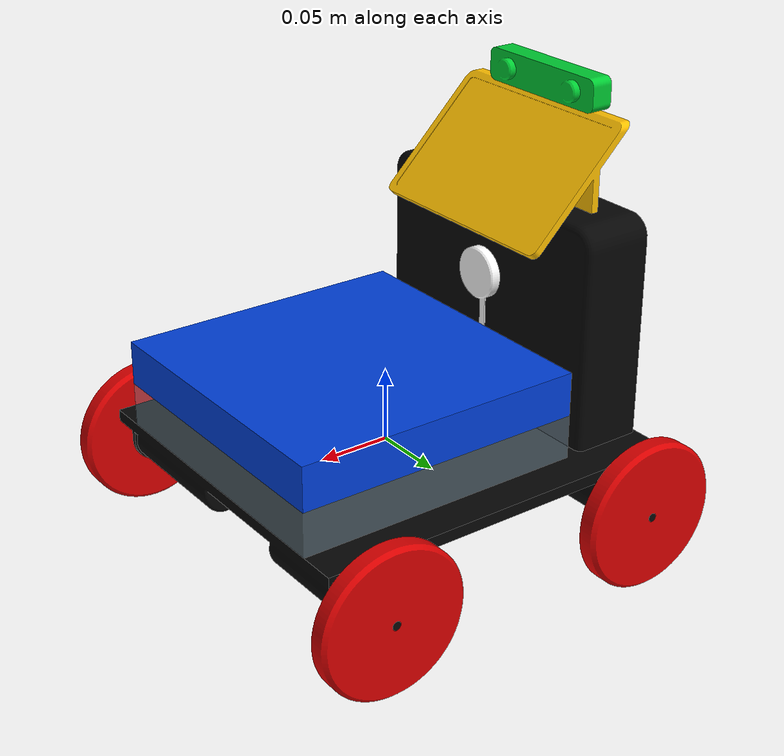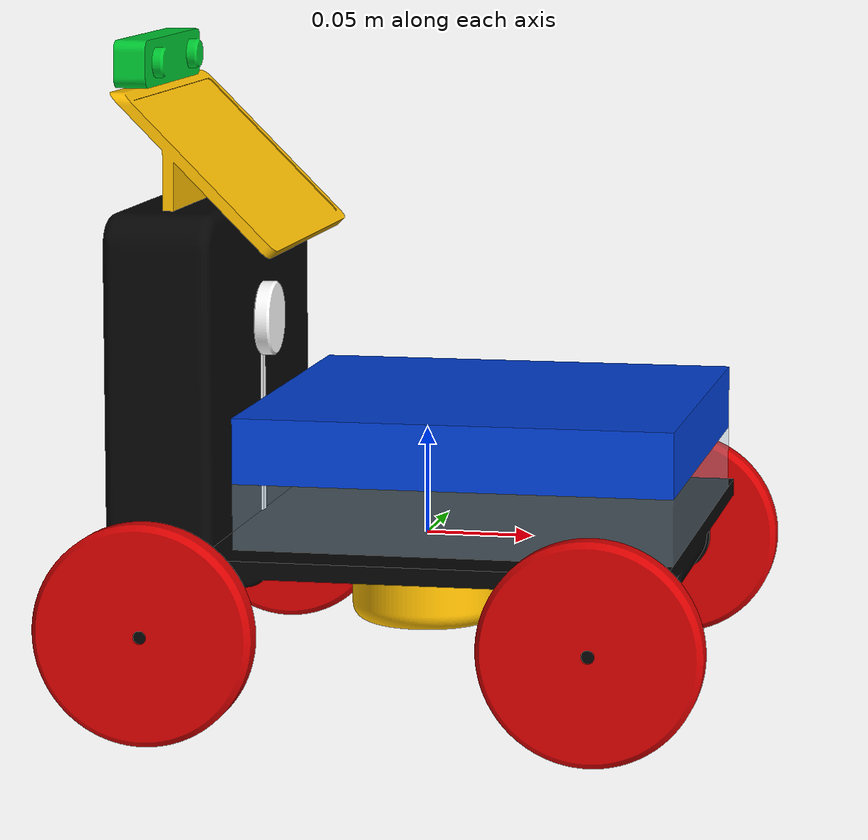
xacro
<?xml version='1.0' encoding='utf-8'?>
<robot name="cura" xmlns:xacro="http://www.ros.org/wiki/xacro">

    <xacro:include filename="$(find cura_description)/urdf/materials.xacro"/>
    <!-- Include gazebo -->
    <xacro:include filename="$(find cura_description)/urdf/gazebo.xacro"/>

    <link name="base_footprint"/>

    <link name="base_link">
        <inertial>
            <origin xyz="-0.08262380653775205 -2.2286482841173966e-06 0.061297925710071505" rpy="0.0 0.0 0.0" />
            <mass value="5.112448552839006" />
            <inertia ixx="0.0379135930743829" iyy="0.03713968953386242" izz="0.04251956273154715" ixy="9.414032329921333e-07" iyz="-9.604778950091125e-07" ixz="0.009027905699237473" />
        </inertial>
        <visual name="base_link_visual">
            <origin xyz="0.0 0.0 0.0" rpy="0.0 0.0 0.0" />
            <geometry>
                <mesh filename="package://cura_description/meshes/base_link.stl" scale="0.001 0.001 0.001" />
            </geometry>
            <material name="base_link"/>
        </visual>
        <collision name="base_link_collision">
            <origin xyz="0.0 0.0 0.051" rpy="0.0 0.0 0.0" />
            <geometry>
                <mesh filename="package://cura_description/meshes/base_link.stl" scale="0.001 0.001 0.001" />
            </geometry>
        </collision>
    </link>
    <link name="sanitation_tank">
        <inertial>
            <origin xyz="-3.7017007608692317e-16 0.09999999999999988 0.014999999999999918" rpy="0.0 -0.0 0.0" />
            <mass value="0.1810668300000006" />
            <inertia ixx="0.0007586630270449977" iyy="0.0007586630270450012" izz="0.0014546284342450005" ixy="9.17793106534601e-19" iyz="-1.81603863891322e-18" ixz="-5.011148212657467e-19" />
        </inertial>
        <visual name="sanitation_tank_visual">
            <origin xyz="-4.263256414560601e-16 0.12499999999999972 -0.00800000000000008" rpy="-3.8925688692122967e-16 -6.383782391594647e-16 -1.5707963267948932" />
            <geometry>
                <mesh filename="package://cura_description/meshes/sanitation_tank.stl" scale="0.001 0.001 0.001" />
            </geometry>
            <material name="sanitization_transparent"/>
        </visual>
        <collision name="sanitation_tank_collision">
            <origin xyz="0 0.1 0.015" rpy="0 0 0" />
            <geometry>
                <box size="0.2 0.2 0.03"/>
            </geometry>
        </collision>
    </link>
    <link name="ultrasonic_humidifier">
        <inertial>
            <origin xyz="9.495055921730156e-18 -0.08926824762380647 0.0035869477650948144" rpy="0.0 -0.0 0.0" />
            <mass value="0.00793228924731246" />
            <inertia ixx="1.9151899989100897e-06" iyy="6.081252851735302e-07" izz="2.446233038281946e-06" ixy="-4.31330295791347e-21" iyz="6.68987338025778e-08" ixz="-1.0478967289628475e-21" />
        </inertial>
        <visual name="ultrasonic_humidifier_visual">
            <origin xyz="0.0 0.008 0.08" rpy="1.5707963267948966 -1.5707963267948966 0" />
            <geometry>
                <mesh filename="package://cura_description/meshes/ultrasonic_humidifier.stl" scale="0.001 0.001 0.001" />
            </geometry>
            <material name="ultrasonic_humidifier"/>
        </visual>
        <collision name="ultrasonic_humidifier_collision">
            <origin xyz="0.0 -0.08 0.0" rpy="0 0 0" />
            <geometry>
                <cylinder radius="0.0175" length="0.0075"/>
            </geometry>
        </collision>
    </link>
    <link name="camera_link">
        <inertial>
            <origin xyz="0.0004355208632667207 2.808606897768501e-13 0.010999998588990962" rpy="0.0 -0.0 0.0" />
            <mass value="0.03622612512790615" />
            <inertia ixx="3.127500439889389e-05" iyy="2.1988384702894236e-06" izz="3.0681383750880316e-05" ixy="-3.1212025022856454e-18" iyz="2.975526497420423e-20" ixz="2.168404344971009e-19" />
        </inertial>
        <visual name="camera_link_visual">
            <origin xyz="0.12949747000000017 -6.661338147750939e-18 -0.21103301000000035" rpy="-3.1308063019589895e-16 -1.665334536937735e-15 -3.081487911019576e-33" />
            <geometry>
                <mesh filename="package://cura_description/meshes/camera_link.stl" scale="0.001 0.001 0.001" />
            </geometry>
            <material name="camera_link"/>
        </visual>
        <collision name="camera_link_collision">
            <origin xyz="0.0025 0 0.011" rpy="0 0 0" />
            <geometry>
                <box size="0.02 0.1 0.022"/>
            </geometry>
        </collision>
    </link>

    <!--Wheels-->
    <link name="f_wheel_r">
        <inertial>
            <origin xyz="-1.1546319456101628e-15 -4.440892098500626e-18 -0.007500000000000018" rpy="0.0 -0.0 0.0" />
            <mass value="0.12238212935734573" />
            <inertia ixx="7.781462317218903e-05" iyy="7.78146231719323e-05" izz="0.00015114632321814475" ixy="0.0" iyz="1.0842021724855044e-19" ixz="-2.168404344971009e-19" />
        </inertial>
        <visual name="f_wheel_r_visual">
            <origin xyz="-0.1 0.023 -0.135" rpy="-1.5707963267948966 -0.0 0.0" />
            <geometry>
                <mesh filename="package://cura_description/meshes/f_wheel_r.stl" scale="0.001 0.001 0.001" />
            </geometry>
            <material name="wheels"/>
        </visual>
        <collision name="f_wheel_r_collision">
            <origin xyz="0 0 0" rpy="0 0 0" />
            <geometry>
                <cylinder radius="0.05" length="0.015"/>
            </geometry>
        </collision>
    </link>
    <link name="f_wheel_l">
        <inertial>
            <origin xyz="1.1723955140041654e-15 -1.3322676295501878e-17 -0.007499999999999982" rpy="0.0 -0.0 0.0" />
            <mass value="0.1223821293573457" />
            <inertia ixx="7.78146231721886e-05" iyy="7.781462317193143e-05" izz="0.00015114632321814475" ixy="-2.710505431213761e-19" iyz="-1.6263032587282567e-19" ixz="-2.168404344971009e-19" />
        </inertial>
        <visual name="f_wheel_l_visual">
            <origin xyz="-0.1 -0.023 -0.149" rpy="1.5707963267948966 -0.0 0.0" />
            <geometry>
                <mesh filename="package://cura_description/meshes/f_wheel_l.stl" scale="0.001 0.001 0.001" />
            </geometry>
            <material name="wheels"/>
        </visual>
        <collision name="f_wheel_l_collision">
            <origin xyz="0 0 0" rpy="0 0 0" />
            <geometry>
                <cylinder radius="0.05" length="0.015"/>
            </geometry>
        </collision>
    </link>
    <link name="b_wheel_r">
        <inertial>
            <origin xyz="-1.1723955140041654e-15 1.7763568394002505e-17 -0.007500000000000018" rpy="0.0 -0.0 0.0" />
            <mass value="0.12238212935734573" />
            <inertia ixx="7.781462317218947e-05" iyy="7.78146231719323e-05" izz="0.00015114632321814496" ixy="0.0" iyz="-2.710505431213761e-19" ixz="-2.168404344971009e-19" />
        </inertial>
        <visual name="b_wheel_r_visual">
            <origin xyz="0.1 0.023 -0.135" rpy="-1.5707963267948966 -0.0 0.0" />
            <geometry>
                <mesh filename="package://cura_description/meshes/b_wheel_r.stl" scale="0.001 0.001 0.001" />
            </geometry>
            <material name="wheels"/>
        </visual>
        <collision name="b_wheel_r_collision">
            <origin xyz="0 0 0" rpy="0 0 0" />
            <geometry>
                <cylinder radius="0.05" length="0.015"/>
            </geometry>
        </collision>
    </link>
    <link name="b_wheel_l">
        <inertial>
            <origin xyz="1.1191048088221578e-15 4.440892098500626e-18 -0.0075" rpy="0.0 -0.0 0.0" />
            <mass value="0.12238212935734573" />
            <inertia ixx="7.781462317218773e-05" iyy="7.781462317193143e-05" izz="0.0001511463232181441" ixy="1.0842021724855044e-19" iyz="1.0842021724855044e-19" ixz="0.0" />
        </inertial>
        <visual name="b_wheel_l_visual">
            <origin xyz="0.1 -0.023 -0.149" rpy="1.5707963267948966 -0.0 0.0" />
            <geometry>
                <mesh filename="package://cura_description/meshes/b_wheel_l.stl" scale="0.001 0.001 0.001" />
            </geometry>
            <material name="wheels"/>
        </visual>
        <collision name="b_wheel_l_collision">
            <origin xyz="0 0 0" rpy="0 0 0" />
            <geometry>
                <cylinder radius="0.05" length="0.015"/>
            </geometry>
        </collision>
    </link>

    <link name="hmi">
        <inertial>
            <origin xyz="0.009071293031360598 5.098169701195674e-17 0.0158352964536687" rpy="0.0 -0.0 0.0" />
            <mass value="0.10596741272194547" />
            <inertia ixx="0.00023875316959975348" iyy="7.865987992900208e-05" izz="0.00023981759909064463" ixy="-3.0214916423002986e-19" iyz="2.3681574105902843e-19" ixz="3.640533841500152e-05" />
        </inertial>
        <visual name="hmi_visual">
            <origin xyz="0.10499999999999984 6.661338147750939e-18 -0.15799999999999972" rpy="-7.728840207056554e-17 -1.665334536937734e-16 0.0" />
            <geometry>
                <mesh filename="package://cura_description/meshes/hmi.stl" scale="0.001 0.001 0.001" />
            </geometry>
            <material name="hmi"/>
        </visual>
        <collision name="hmi_collision">
            <origin xyz="0.10499999999999984 6.661338147750939e-18 -0.15799999999999972" rpy="-7.728840207056554e-17 -1.665334536937734e-16 0.0" />
            <geometry>
                <mesh filename="package://cura_description/meshes/hmi.stl" scale="0.001 0.001 0.001" />
            </geometry>
        </collision>
    </link>
    <link name="storage_link">
        <inertial>
            <origin xyz="-1.2878587085651815e-16 6.223015277861142e-62 0.014999999999999982" rpy="0.0 1.0947644252537636e-47 4.6420214075303244e-108" />
            <mass value="1.194432450000008" />
            <inertia ixx="0.0050046258506750065" iyy="0.0050046258506750265" izz="0.009595658158675037" ixy="-1.4279066817834966e-17" iyz="1.0709300113376228e-18" ixz="7.372574772901427e-18" />
        </inertial>
        <visual name="storage_link_visual">
            <origin xyz="-0.030000000000000113 1.4322126339888328e-47 -0.03799999999999993" rpy="-1.3123729491118374e-16 -2.2204460492503146e-16 -4.774042113296092e-46" />
            <geometry>
                <mesh filename="package://cura_description/meshes/storage_link.stl" scale="0.001 0.001 0.001" />
            </geometry>
            <material name="storage_link"/>
        </visual>
        <collision name="storage_link_collision">
            <origin xyz="0 0 0.015" rpy="0 0 0" />
            <geometry>
                <box size="0.2 0.2 0.03" />
            </geometry>
        </collision>
    </link>

    <link name="lidar_link">
        <inertial>
            <origin xyz="7.116039687743801e-18 0.0 -0.020198259768853668" rpy="0.0 0.0 0.0" />
            <mass value="1.2541268954019027" />
            <inertia ixx="0.0005611320175222303" iyy="0.0005611320175222528" izz="0.0007797876536401378" ixy="3.5697667044587433e-19" iyz="0.0" ixz="-1.769352804218788e-21" />
        </inertial>
        <visual name="lidar_link_visual">
            <origin xyz="0.0 0.0 0.0" rpy="0.0 0.0 0.0" />
            <geometry>
                <mesh filename="package://cura_description/meshes/lidar_link.stl" scale="0.001 0.001 0.001" />
            </geometry>
            <material name="lidar_link"/>
        </visual>
        <collision name="lidar_link_collision">
            <origin xyz="0.0 0.0 -0.0205" rpy="0.0 0.0 0.0" />
            <geometry>
                <cylinder radius="0.035" length="0.041"/>
            </geometry>
        </collision>
    </link>

    <joint name="base_link_joint" type="fixed">
        <origin xyz="0.0 0.0 0.0" rpy="0.0 -0.0 0.0" />
        <parent link="base_footprint" />
        <child link="base_link" />
    </joint>
    <joint name="sanitation_tank_joint" type="fixed">
        <origin xyz="0.13 0.0 0.008" rpy="0.0 -0.0 1.5707963267948966" />
        <parent link="base_link" />
        <child link="sanitation_tank" />
    </joint>
    <joint name="b_wheel_r_revolute" type="continuous">
        <origin xyz="-0.1 -0.1495 -0.023" rpy="-1.5707963267948966 -0.0 0.0" />
        <parent link="base_link" />
        <child link="b_wheel_r" />
        <axis xyz="0.0 0.0 1.0" />
    </joint>
    <joint name="f_wheel_l_revolute" type="continuous">
        <origin xyz="0.1 0.149 -0.023" rpy="-1.5707963267948966 -0.0 0.0" />
        <parent link="base_link" />
        <child link="f_wheel_l" />
        <axis xyz="0.0 0.0 1.0" />
    </joint>
    <joint name="b_wheel_l_revolute" type="continuous">
        <origin xyz="-0.1 0.149 -0.023" rpy="-1.5707963267948966 -0.0 0.0" />
        <parent link="base_link" />
        <child link="b_wheel_l" />
        <axis xyz="0.0 0.0 1.0" />
    </joint>
    <joint name="f_wheel_r_revolute" type="continuous">
        <origin xyz="0.1 -0.1495 -0.023" rpy="-1.5707963267948966 -0.0 0.0" />
        <parent link="base_link" />
        <child link="f_wheel_r" />
        <axis xyz="0.0 0.0 1.0" />
    </joint>
    <joint name="ultrasonic_humidifier_joint" type="fixed">
        <origin xyz="-0.08 0.0 0.008" rpy="-1.5707963267948966 -0.0 -1.5707963267948966" />
        <parent link="base_link" />
        <child link="ultrasonic_humidifier" />
    </joint>
    <joint name="hmi_joint" type="fixed">
        <origin xyz="-0.105 0.0 0.158" rpy="0.0 -0.0 0.0" />
        <parent link="base_link" />
        <child link="hmi" />
    </joint>
    <joint name="camera_joint" type="fixed">
        <origin xyz="-0.024497470000000004 0.0 0.05303300999999998" rpy="0.0 -0.0 0.0" />
        <parent link="hmi" />
        <child link="camera_link" />
    </joint>
    <joint name="storage_joint" type="fixed">
        <origin xyz="0.0 0.1 0.03" rpy="0.0 9.86076131526265e-32 -1.5707963267948966" />
        <parent link="sanitation_tank" />
        <child link="storage_link" />
    </joint>
    <joint name="lidar_joint" type="fixed">
        <origin xyz="0 0 0" rpy="0.0 0.0 0.0"/>
        <parent link="base_link"/>
        <child link="lidar_link"/>
    </joint>
</robot>

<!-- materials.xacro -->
<robot xmlns:xacro="http://www.ros.org/wiki/xacro">

    <!-- Base Link - Black -->
    <material name="base_link">
        <color rgba="0.02 0.02 0.02 1.0"/>
    </material>

    <!-- Sanitization Tank - Transparent -->
    <material name="sanitization_transparent">
        <color rgba="0.75 0.90 1.00 0.35"/>
    </material>

    <!-- Storage Link - Blue -->
    <material name="storage_link">
        <color rgba="0.00 0.25 0.85 1.0"/>
    </material>

    <!-- HMI - Yellow -->
    <material name="hmi">
        <color rgba="1.00 0.75 0.00 1.0"/>
    </material>

    <material name="lidar_link">
        <color rgba="1.00 0.75 0.00 1.0"/>
    </material>

    <!-- Camera - Green -->
    <material name="camera_link">
        <color rgba="0.00 0.80 0.20 1.0"/>
    </material>

    <!-- Wheels - Red -->
    <material name="wheels">
        <color rgba="0.85 0.00 0.00 1.0"/>
    </material>

    <!-- Ultrasonic Humidifier - White -->
    <material name="ultrasonic_humidifier">
        <color rgba="1.00 1.00 1.00 1.0"/>
    </material>

</robot>
